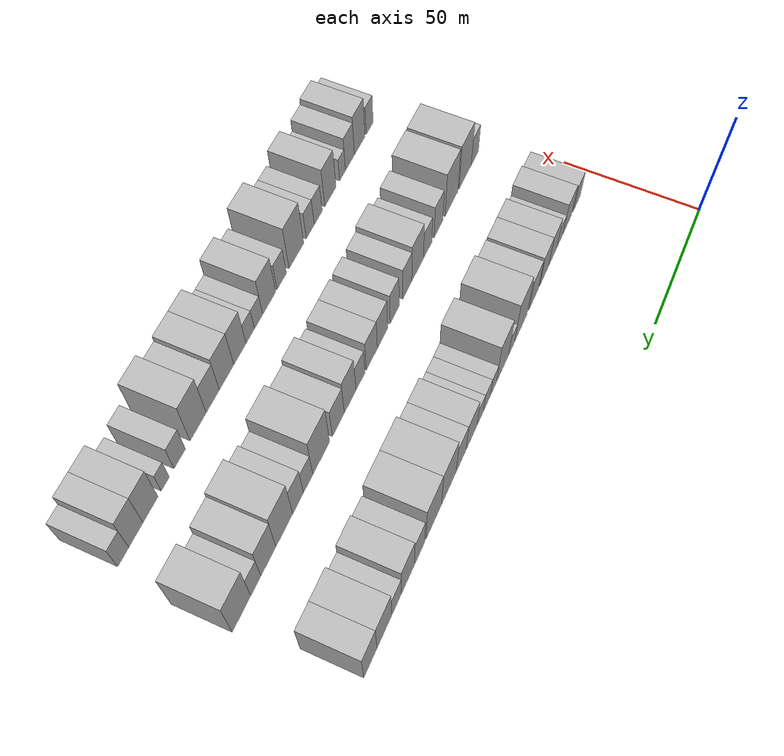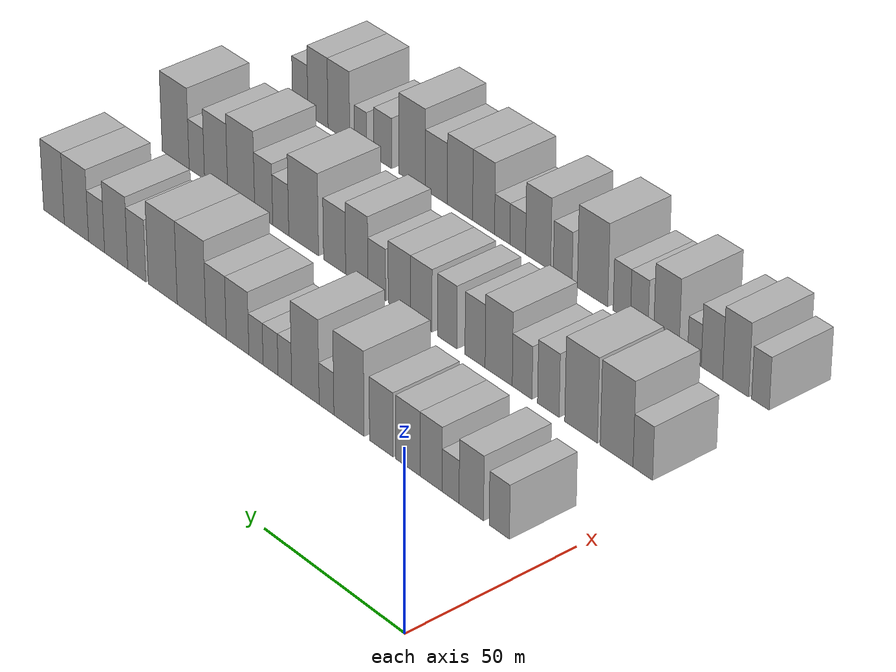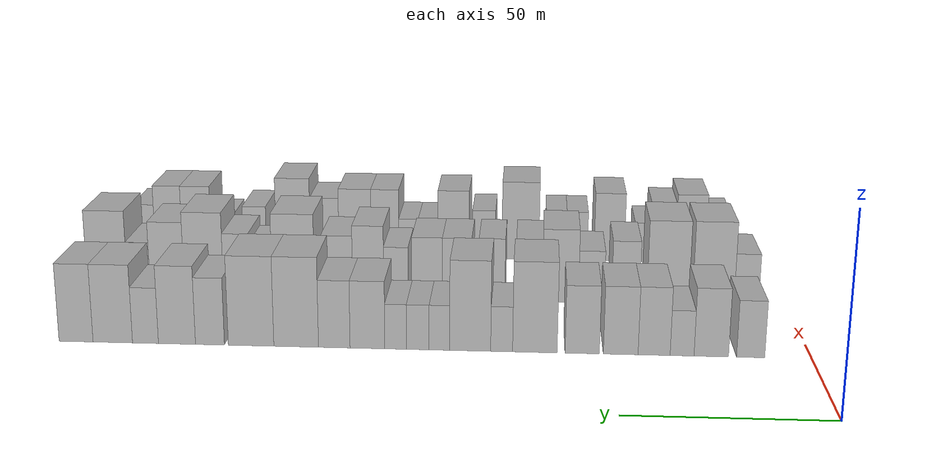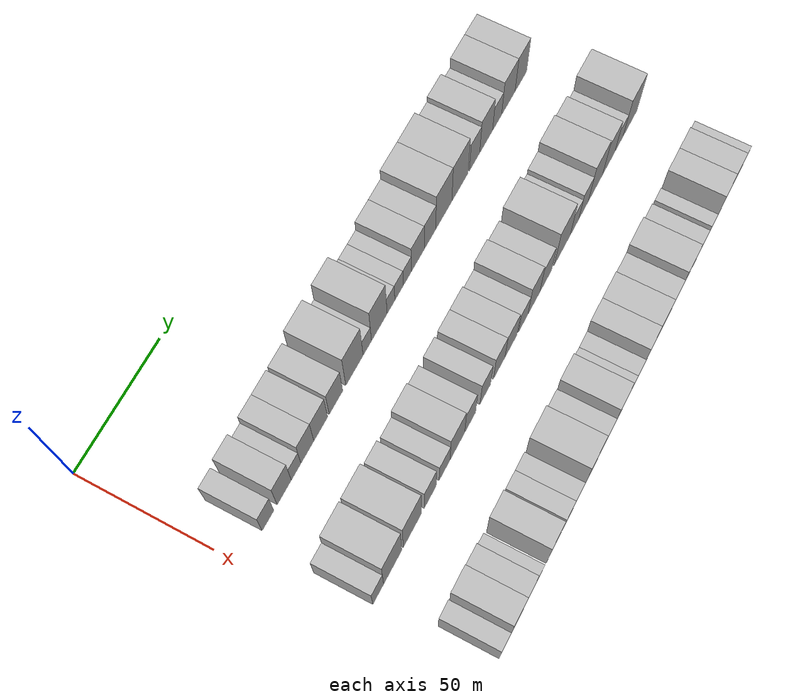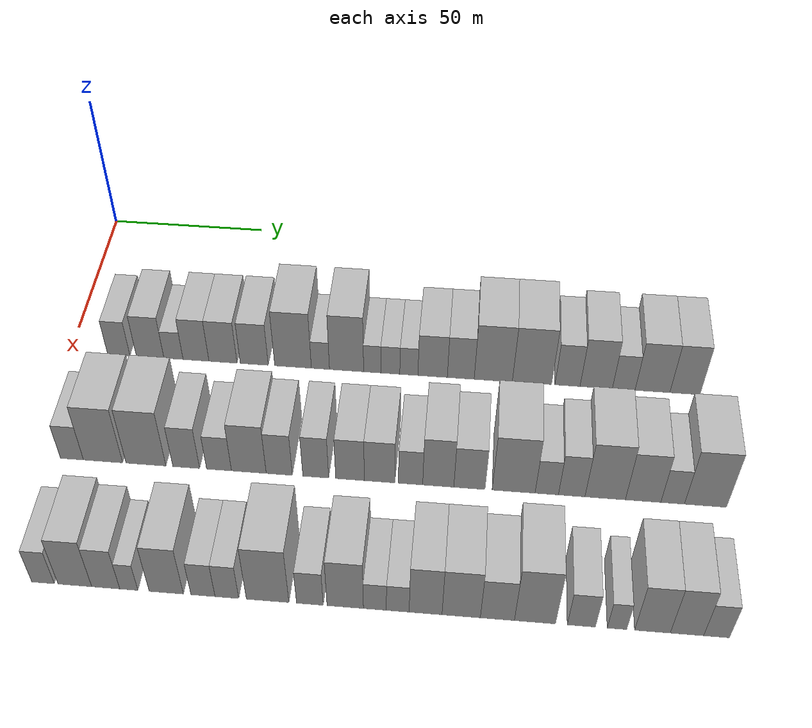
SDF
<sdf version="1.6">
 <world name="default">
  <model name="building_41">
   <static>1</static>
   <pose>50.0000 15.2421 0 0.000000 0.000000 0.000000</pose>
   <link name="link">
    <pose>0 0 7.50 0 0 0</pose>
    <collision name="collision"><geometry><box><size>20.0000 7.0069 15.0000</size></box></geometry></collision>
    <visual name="visual">
     <cast_shadows>0</cast_shadows>
     <geometry><box><size>20.0000 7.0069 15.0000</size></box></geometry>
     <material>
      <script>
       <uri>model://HANNAS_wall/materials/scripts</uri>
       <uri>model://HANNAS_wall/materials/textures</uri>
       <name>vrc/HANNAS_wall</name>
      </script>
     </material>
    </visual>
   </link>
  </model>
  <model name="building_42">
   <static>1</static>
   <pose>50.0000 25.0485 0 0.000000 0.000000 0.000000</pose>
   <link name="link">
    <pose>0 0 9.00 0 0 0</pose>
    <collision name="collision"><geometry><box><size>20.0000 8.6059 18.0000</size></box></geometry></collision>
    <visual name="visual">
     <cast_shadows>0</cast_shadows>
     <geometry><box><size>20.0000 8.6059 18.0000</size></box></geometry>
     <material>
      <script>
       <uri>model://HANNAS_wall/materials/scripts</uri>
       <uri>model://HANNAS_wall/materials/textures</uri>
       <name>vrc/HANNAS_wall</name>
      </script>
     </material>
    </visual>
   </link>
  </model>
  <model name="building_43">
   <static>1</static>
   <pose>50.0000 32.3402 0 0.000000 0.000000 0.000000</pose>
   <link name="link">
    <pose>0 0 6.00 0 0 0</pose>
    <collision name="collision"><geometry><box><size>20.0000 5.9775 12.0000</size></box></geometry></collision>
    <visual name="visual">
     <cast_shadows>0</cast_shadows>
     <geometry><box><size>20.0000 5.9775 12.0000</size></box></geometry>
     <material>
      <script>
       <uri>model://HANNAS_wall/materials/scripts</uri>
       <uri>model://HANNAS_wall/materials/textures</uri>
       <name>vrc/HANNAS_wall</name>
      </script>
     </material>
    </visual>
   </link>
  </model>
  <model name="building_44">
   <static>1</static>
   <pose>50.0000 39.3479 0 0.000000 0.000000 0.000000</pose>
   <link name="link">
    <pose>0 0 9.00 0 0 0</pose>
    <collision name="collision"><geometry><box><size>20.0000 8.0379 18.0000</size></box></geometry></collision>
    <visual name="visual">
     <cast_shadows>0</cast_shadows>
     <geometry><box><size>20.0000 8.0379 18.0000</size></box></geometry>
     <material>
      <script>
       <uri>model://HANNAS_wall/materials/scripts</uri>
       <uri>model://HANNAS_wall/materials/textures</uri>
       <name>vrc/HANNAS_wall</name>
      </script>
     </material>
    </visual>
   </link>
  </model>
  <model name="building_45">
   <static>1</static>
   <pose>50.0000 47.7327 0 0.000000 0.000000 0.000000</pose>
   <link name="link">
    <pose>0 0 9.00 0 0 0</pose>
    <collision name="collision"><geometry><box><size>20.0000 8.7317 18.0000</size></box></geometry></collision>
    <visual name="visual">
     <cast_shadows>0</cast_shadows>
     <geometry><box><size>20.0000 8.7317 18.0000</size></box></geometry>
     <material>
      <script>
       <uri>model://HANNAS_wall/materials/scripts</uri>
       <uri>model://HANNAS_wall/materials/textures</uri>
       <name>vrc/HANNAS_wall</name>
      </script>
     </material>
    </visual>
   </link>
  </model>
  <model name="building_46">
   <static>1</static>
   <pose>50.0000 57.4240 0 0.000000 0.000000 0.000000</pose>
   <link name="link">
    <pose>0 0 9.00 0 0 0</pose>
    <collision name="collision"><geometry><box><size>20.0000 8.6509 18.0000</size></box></geometry></collision>
    <visual name="visual">
     <cast_shadows>0</cast_shadows>
     <geometry><box><size>20.0000 8.6509 18.0000</size></box></geometry>
     <material>
      <script>
       <uri>model://HANNAS_wall/materials/scripts</uri>
       <uri>model://HANNAS_wall/materials/textures</uri>
       <name>vrc/HANNAS_wall</name>
      </script>
     </material>
    </visual>
   </link>
  </model>
  <model name="building_47">
   <static>1</static>
   <pose>50.0000 69.3902 0 0.000000 0.000000 0.000000</pose>
   <link name="link">
    <pose>0 0 12.00 0 0 0</pose>
    <collision name="collision"><geometry><box><size>20.0000 11.2815 24.0000</size></box></geometry></collision>
    <visual name="visual">
     <cast_shadows>0</cast_shadows>
     <geometry><box><size>20.0000 11.2815 24.0000</size></box></geometry>
     <material>
      <script>
       <uri>model://HANNAS_wall/materials/scripts</uri>
       <uri>model://HANNAS_wall/materials/textures</uri>
       <name>vrc/HANNAS_wall</name>
      </script>
     </material>
    </visual>
   </link>
  </model>
  <model name="building_48">
   <static>1</static>
   <pose>50.0000 77.8082 0 0.000000 0.000000 0.000000</pose>
   <link name="link">
    <pose>0 0 6.00 0 0 0</pose>
    <collision name="collision"><geometry><box><size>20.0000 5.5546 12.0000</size></box></geometry></collision>
    <visual name="visual">
     <cast_shadows>0</cast_shadows>
     <geometry><box><size>20.0000 5.5546 12.0000</size></box></geometry>
     <material>
      <script>
       <uri>model://HANNAS_wall/materials/scripts</uri>
       <uri>model://HANNAS_wall/materials/textures</uri>
       <name>vrc/HANNAS_wall</name>
      </script>
     </material>
    </visual>
   </link>
  </model>
  <model name="building_49">
   <static>1</static>
   <pose>50.0000 85.8110 0 0.000000 0.000000 0.000000</pose>
   <link name="link">
    <pose>0 0 12.00 0 0 0</pose>
    <collision name="collision"><geometry><box><size>20.0000 10.4510 24.0000</size></box></geometry></collision>
    <visual name="visual">
     <cast_shadows>0</cast_shadows>
     <geometry><box><size>20.0000 10.4510 24.0000</size></box></geometry>
     <material>
      <script>
       <uri>model://HANNAS_wall/materials/scripts</uri>
       <uri>model://HANNAS_wall/materials/textures</uri>
       <name>vrc/HANNAS_wall</name>
      </script>
     </material>
    </visual>
   </link>
  </model>
  <model name="building_50">
   <static>1</static>
   <pose>50.0000 93.6552 0 0.000000 0.000000 0.000000</pose>
   <link name="link">
    <pose>0 0 6.00 0 0 0</pose>
    <collision name="collision"><geometry><box><size>20.0000 5.2373 12.0000</size></box></geometry></collision>
    <visual name="visual">
     <cast_shadows>0</cast_shadows>
     <geometry><box><size>20.0000 5.2373 12.0000</size></box></geometry>
     <material>
      <script>
       <uri>model://HANNAS_wall/materials/scripts</uri>
       <uri>model://HANNAS_wall/materials/textures</uri>
       <name>vrc/HANNAS_wall</name>
      </script>
     </material>
    </visual>
   </link>
  </model>
  <model name="building_51">
   <static>1</static>
   <pose>50.0000 99.1758 0 0.000000 0.000000 0.000000</pose>
   <link name="link">
    <pose>0 0 6.00 0 0 0</pose>
    <collision name="collision"><geometry><box><size>20.0000 5.8039 12.0000</size></box></geometry></collision>
    <visual name="visual">
     <cast_shadows>0</cast_shadows>
     <geometry><box><size>20.0000 5.8039 12.0000</size></box></geometry>
     <material>
      <script>
       <uri>model://HANNAS_wall/materials/scripts</uri>
       <uri>model://HANNAS_wall/materials/textures</uri>
       <name>vrc/HANNAS_wall</name>
      </script>
     </material>
    </visual>
   </link>
  </model>
  <model name="building_52">
   <static>1</static>
   <pose>50.0000 104.8412 0 0.000000 0.000000 0.000000</pose>
   <link name="link">
    <pose>0 0 6.00 0 0 0</pose>
    <collision name="collision"><geometry><box><size>20.0000 5.5271 12.0000</size></box></geometry></collision>
    <visual name="visual">
     <cast_shadows>0</cast_shadows>
     <geometry><box><size>20.0000 5.5271 12.0000</size></box></geometry>
     <material>
      <script>
       <uri>model://HANNAS_wall/materials/scripts</uri>
       <uri>model://HANNAS_wall/materials/textures</uri>
       <name>vrc/HANNAS_wall</name>
      </script>
     </material>
    </visual>
   </link>
  </model>
  <model name="building_53">
   <static>1</static>
   <pose>50.0000 112.0588 0 0.000000 0.000000 0.000000</pose>
   <link name="link">
    <pose>0 0 9.00 0 0 0</pose>
    <collision name="collision"><geometry><box><size>20.0000 8.9081 18.0000</size></box></geometry></collision>
    <visual name="visual">
     <cast_shadows>0</cast_shadows>
     <geometry><box><size>20.0000 8.9081 18.0000</size></box></geometry>
     <material>
      <script>
       <uri>model://HANNAS_wall/materials/scripts</uri>
       <uri>model://HANNAS_wall/materials/textures</uri>
       <name>vrc/HANNAS_wall</name>
      </script>
     </material>
    </visual>
   </link>
  </model>
  <model name="building_54">
   <static>1</static>
   <pose>50.0000 120.5730 0 0.000000 0.000000 0.000000</pose>
   <link name="link">
    <pose>0 0 9.00 0 0 0</pose>
    <collision name="collision"><geometry><box><size>20.0000 8.1203 18.0000</size></box></geometry></collision>
    <visual name="visual">
     <cast_shadows>0</cast_shadows>
     <geometry><box><size>20.0000 8.1203 18.0000</size></box></geometry>
     <material>
      <script>
       <uri>model://HANNAS_wall/materials/scripts</uri>
       <uri>model://HANNAS_wall/materials/textures</uri>
       <name>vrc/HANNAS_wall</name>
      </script>
     </material>
    </visual>
   </link>
  </model>
  <model name="building_55">
   <static>1</static>
   <pose>50.0000 130.3924 0 0.000000 0.000000 0.000000</pose>
   <link name="link">
    <pose>0 0 12.00 0 0 0</pose>
    <collision name="collision"><geometry><box><size>20.0000 11.5184 24.0000</size></box></geometry></collision>
    <visual name="visual">
     <cast_shadows>0</cast_shadows>
     <geometry><box><size>20.0000 11.5184 24.0000</size></box></geometry>
     <material>
      <script>
       <uri>model://HANNAS_wall/materials/scripts</uri>
       <uri>model://HANNAS_wall/materials/textures</uri>
       <name>vrc/HANNAS_wall</name>
      </script>
     </material>
    </visual>
   </link>
  </model>
  <model name="building_56">
   <static>1</static>
   <pose>50.0000 142.0532 0 0.000000 0.000000 0.000000</pose>
   <link name="link">
    <pose>0 0 12.00 0 0 0</pose>
    <collision name="collision"><geometry><box><size>20.0000 11.8031 24.0000</size></box></geometry></collision>
    <visual name="visual">
     <cast_shadows>0</cast_shadows>
     <geometry><box><size>20.0000 11.8031 24.0000</size></box></geometry>
     <material>
      <script>
       <uri>model://HANNAS_wall/materials/scripts</uri>
       <uri>model://HANNAS_wall/materials/textures</uri>
       <name>vrc/HANNAS_wall</name>
      </script>
     </material>
    </visual>
   </link>
  </model>
  <model name="building_57">
   <static>1</static>
   <pose>50.0000 152.7229 0 0.000000 0.000000 0.000000</pose>
   <link name="link">
    <pose>0 0 9.00 0 0 0</pose>
    <collision name="collision"><geometry><box><size>20.0000 7.5364 18.0000</size></box></geometry></collision>
    <visual name="visual">
     <cast_shadows>0</cast_shadows>
     <geometry><box><size>20.0000 7.5364 18.0000</size></box></geometry>
     <material>
      <script>
       <uri>model://HANNAS_wall/materials/scripts</uri>
       <uri>model://HANNAS_wall/materials/textures</uri>
       <name>vrc/HANNAS_wall</name>
      </script>
     </material>
    </visual>
   </link>
  </model>
  <model name="building_58">
   <static>1</static>
   <pose>50.0000 161.3210 0 0.000000 0.000000 0.000000</pose>
   <link name="link">
    <pose>0 0 10.50 0 0 0</pose>
    <collision name="collision"><geometry><box><size>20.0000 9.6599 21.0000</size></box></geometry></collision>
    <visual name="visual">
     <cast_shadows>0</cast_shadows>
     <geometry><box><size>20.0000 9.6599 21.0000</size></box></geometry>
     <material>
      <script>
       <uri>model://HANNAS_wall/materials/scripts</uri>
       <uri>model://HANNAS_wall/materials/textures</uri>
       <name>vrc/HANNAS_wall</name>
      </script>
     </material>
    </visual>
   </link>
  </model>
  <model name="building_59">
   <static>1</static>
   <pose>50.0000 169.5374 0 0.000000 0.000000 0.000000</pose>
   <link name="link">
    <pose>0 0 7.50 0 0 0</pose>
    <collision name="collision"><geometry><box><size>20.0000 6.7729 15.0000</size></box></geometry></collision>
    <visual name="visual">
     <cast_shadows>0</cast_shadows>
     <geometry><box><size>20.0000 6.7729 15.0000</size></box></geometry>
     <material>
      <script>
       <uri>model://HANNAS_wall/materials/scripts</uri>
       <uri>model://HANNAS_wall/materials/textures</uri>
       <name>vrc/HANNAS_wall</name>
      </script>
     </material>
    </visual>
   </link>
  </model>
  <model name="building_60">
   <static>1</static>
   <pose>50.0000 178.0933 0 0.000000 0.000000 0.000000</pose>
   <link name="link">
    <pose>0 0 10.50 0 0 0</pose>
    <collision name="collision"><geometry><box><size>20.0000 10.3389 21.0000</size></box></geometry></collision>
    <visual name="visual">
     <cast_shadows>0</cast_shadows>
     <geometry><box><size>20.0000 10.3389 21.0000</size></box></geometry>
     <material>
      <script>
       <uri>model://HANNAS_wall/materials/scripts</uri>
       <uri>model://HANNAS_wall/materials/textures</uri>
       <name>vrc/HANNAS_wall</name>
      </script>
     </material>
    </visual>
   </link>
  </model>
  <model name="building_61">
   <static>1</static>
   <pose>50.0000 187.7271 0 0.000000 0.000000 0.000000</pose>
   <link name="link">
    <pose>0 0 10.50 0 0 0</pose>
    <collision name="collision"><geometry><box><size>20.0000 8.9287 21.0000</size></box></geometry></collision>
    <visual name="visual">
     <cast_shadows>0</cast_shadows>
     <geometry><box><size>20.0000 8.9287 21.0000</size></box></geometry>
     <material>
      <script>
       <uri>model://HANNAS_wall/materials/scripts</uri>
       <uri>model://HANNAS_wall/materials/textures</uri>
       <name>vrc/HANNAS_wall</name>
      </script>
     </material>
    </visual>
   </link>
  </model>
  <model name="building_125">
   <static>1</static>
   <pose>90.0000 11.3029 0 0.000000 0.000000 0.000000</pose>
   <link name="link">
    <pose>0 0 7.50 0 0 0</pose>
    <collision name="collision"><geometry><box><size>20.0000 6.7127 15.0000</size></box></geometry></collision>
    <visual name="visual">
     <cast_shadows>0</cast_shadows>
     <geometry><box><size>20.0000 6.7127 15.0000</size></box></geometry>
     <material>
      <script>
       <uri>model://HANNAS_wall/materials/scripts</uri>
       <uri>model://HANNAS_wall/materials/textures</uri>
       <name>vrc/HANNAS_wall</name>
      </script>
     </material>
    </visual>
   </link>
  </model>
  <model name="building_126">
   <static>1</static>
   <pose>90.0000 20.3536 0 0.000000 0.000000 0.000000</pose>
   <link name="link">
    <pose>0 0 12.00 0 0 0</pose>
    <collision name="collision"><geometry><box><size>20.0000 11.3888 24.0000</size></box></geometry></collision>
    <visual name="visual">
     <cast_shadows>0</cast_shadows>
     <geometry><box><size>20.0000 11.3888 24.0000</size></box></geometry>
     <material>
      <script>
       <uri>model://HANNAS_wall/materials/scripts</uri>
       <uri>model://HANNAS_wall/materials/textures</uri>
       <name>vrc/HANNAS_wall</name>
      </script>
     </material>
    </visual>
   </link>
  </model>
  <model name="building_127">
   <static>1</static>
   <pose>90.0000 32.8095 0 0.000000 0.000000 0.000000</pose>
   <link name="link">
    <pose>0 0 12.00 0 0 0</pose>
    <collision name="collision"><geometry><box><size>20.0000 11.5229 24.0000</size></box></geometry></collision>
    <visual name="visual">
     <cast_shadows>0</cast_shadows>
     <geometry><box><size>20.0000 11.5229 24.0000</size></box></geometry>
     <material>
      <script>
       <uri>model://HANNAS_wall/materials/scripts</uri>
       <uri>model://HANNAS_wall/materials/textures</uri>
       <name>vrc/HANNAS_wall</name>
      </script>
     </material>
    </visual>
   </link>
  </model>
  <model name="building_128">
   <static>1</static>
   <pose>90.0000 44.4282 0 0.000000 0.000000 0.000000</pose>
   <link name="link">
    <pose>0 0 9.00 0 0 0</pose>
    <collision name="collision"><geometry><box><size>20.0000 7.7145 18.0000</size></box></geometry></collision>
    <visual name="visual">
     <cast_shadows>0</cast_shadows>
     <geometry><box><size>20.0000 7.7145 18.0000</size></box></geometry>
     <material>
      <script>
       <uri>model://HANNAS_wall/materials/scripts</uri>
       <uri>model://HANNAS_wall/materials/textures</uri>
       <name>vrc/HANNAS_wall</name>
      </script>
     </material>
    </visual>
   </link>
  </model>
  <model name="building_129">
   <static>1</static>
   <pose>90.0000 53.8599 0 0.000000 0.000000 0.000000</pose>
   <link name="link">
    <pose>0 0 7.50 0 0 0</pose>
    <collision name="collision"><geometry><box><size>20.0000 7.1488 15.0000</size></box></geometry></collision>
    <visual name="visual">
     <cast_shadows>0</cast_shadows>
     <geometry><box><size>20.0000 7.1488 15.0000</size></box></geometry>
     <material>
      <script>
       <uri>model://HANNAS_wall/materials/scripts</uri>
       <uri>model://HANNAS_wall/materials/textures</uri>
       <name>vrc/HANNAS_wall</name>
      </script>
     </material>
    </visual>
   </link>
  </model>
  <model name="building_130">
   <static>1</static>
   <pose>90.0000 62.4039 0 0.000000 0.000000 0.000000</pose>
   <link name="link">
    <pose>0 0 10.50 0 0 0</pose>
    <collision name="collision"><geometry><box><size>20.0000 9.9393 21.0000</size></box></geometry></collision>
    <visual name="visual">
     <cast_shadows>0</cast_shadows>
     <geometry><box><size>20.0000 9.9393 21.0000</size></box></geometry>
     <material>
      <script>
       <uri>model://HANNAS_wall/materials/scripts</uri>
       <uri>model://HANNAS_wall/materials/textures</uri>
       <name>vrc/HANNAS_wall</name>
      </script>
     </material>
    </visual>
   </link>
  </model>
  <model name="building_131">
   <static>1</static>
   <pose>90.0000 71.0984 0 0.000000 0.000000 0.000000</pose>
   <link name="link">
    <pose>0 0 9.00 0 0 0</pose>
    <collision name="collision"><geometry><box><size>20.0000 7.4497 18.0000</size></box></geometry></collision>
    <visual name="visual">
     <cast_shadows>0</cast_shadows>
     <geometry><box><size>20.0000 7.4497 18.0000</size></box></geometry>
     <material>
      <script>
       <uri>model://HANNAS_wall/materials/scripts</uri>
       <uri>model://HANNAS_wall/materials/textures</uri>
       <name>vrc/HANNAS_wall</name>
      </script>
     </material>
    </visual>
   </link>
  </model>
  <model name="building_132">
   <static>1</static>
   <pose>90.0000 81.4880 0 0.000000 0.000000 0.000000</pose>
   <link name="link">
    <pose>0 0 9.00 0 0 0</pose>
    <collision name="collision"><geometry><box><size>20.0000 7.3295 18.0000</size></box></geometry></collision>
    <visual name="visual">
     <cast_shadows>0</cast_shadows>
     <geometry><box><size>20.0000 7.3295 18.0000</size></box></geometry>
     <material>
      <script>
       <uri>model://HANNAS_wall/materials/scripts</uri>
       <uri>model://HANNAS_wall/materials/textures</uri>
       <name>vrc/HANNAS_wall</name>
      </script>
     </material>
    </visual>
   </link>
  </model>
  <model name="building_133">
   <static>1</static>
   <pose>90.0000 91.2177 0 0.000000 0.000000 0.000000</pose>
   <link name="link">
    <pose>0 0 9.00 0 0 0</pose>
    <collision name="collision"><geometry><box><size>20.0000 8.1301 18.0000</size></box></geometry></collision>
    <visual name="visual">
     <cast_shadows>0</cast_shadows>
     <geometry><box><size>20.0000 8.1301 18.0000</size></box></geometry>
     <material>
      <script>
       <uri>model://HANNAS_wall/materials/scripts</uri>
       <uri>model://HANNAS_wall/materials/textures</uri>
       <name>vrc/HANNAS_wall</name>
      </script>
     </material>
    </visual>
   </link>
  </model>
  <model name="building_134">
   <static>1</static>
   <pose>90.0000 99.5741 0 0.000000 0.000000 0.000000</pose>
   <link name="link">
    <pose>0 0 9.00 0 0 0</pose>
    <collision name="collision"><geometry><box><size>20.0000 8.5826 18.0000</size></box></geometry></collision>
    <visual name="visual">
     <cast_shadows>0</cast_shadows>
     <geometry><box><size>20.0000 8.5826 18.0000</size></box></geometry>
     <material>
      <script>
       <uri>model://HANNAS_wall/materials/scripts</uri>
       <uri>model://HANNAS_wall/materials/textures</uri>
       <name>vrc/HANNAS_wall</name>
      </script>
     </material>
    </visual>
   </link>
  </model>
  <model name="building_135">
   <static>1</static>
   <pose>90.0000 108.2905 0 0.000000 0.000000 0.000000</pose>
   <link name="link">
    <pose>0 0 7.50 0 0 0</pose>
    <collision name="collision"><geometry><box><size>20.0000 6.8503 15.0000</size></box></geometry></collision>
    <visual name="visual">
     <cast_shadows>0</cast_shadows>
     <geometry><box><size>20.0000 6.8503 15.0000</size></box></geometry>
     <material>
      <script>
       <uri>model://HANNAS_wall/materials/scripts</uri>
       <uri>model://HANNAS_wall/materials/textures</uri>
       <name>vrc/HANNAS_wall</name>
      </script>
     </material>
    </visual>
   </link>
  </model>
  <model name="building_136">
   <static>1</static>
   <pose>90.0000 116.0845 0 0.000000 0.000000 0.000000</pose>
   <link name="link">
    <pose>0 0 10.50 0 0 0</pose>
    <collision name="collision"><geometry><box><size>20.0000 8.7376 21.0000</size></box></geometry></collision>
    <visual name="visual">
     <cast_shadows>0</cast_shadows>
     <geometry><box><size>20.0000 8.7376 21.0000</size></box></geometry>
     <material>
      <script>
       <uri>model://HANNAS_wall/materials/scripts</uri>
       <uri>model://HANNAS_wall/materials/textures</uri>
       <name>vrc/HANNAS_wall</name>
      </script>
     </material>
    </visual>
   </link>
  </model>
  <model name="building_137">
   <static>1</static>
   <pose>90.0000 124.8177 0 0.000000 0.000000 0.000000</pose>
   <link name="link">
    <pose>0 0 9.00 0 0 0</pose>
    <collision name="collision"><geometry><box><size>20.0000 8.7287 18.0000</size></box></geometry></collision>
    <visual name="visual">
     <cast_shadows>0</cast_shadows>
     <geometry><box><size>20.0000 8.7287 18.0000</size></box></geometry>
     <material>
      <script>
       <uri>model://HANNAS_wall/materials/scripts</uri>
       <uri>model://HANNAS_wall/materials/textures</uri>
       <name>vrc/HANNAS_wall</name>
      </script>
     </material>
    </visual>
   </link>
  </model>
  <model name="building_138">
   <static>1</static>
   <pose>90.0000 137.1589 0 0.000000 0.000000 0.000000</pose>
   <link name="link">
    <pose>0 0 12.00 0 0 0</pose>
    <collision name="collision"><geometry><box><size>20.0000 11.9539 24.0000</size></box></geometry></collision>
    <visual name="visual">
     <cast_shadows>0</cast_shadows>
     <geometry><box><size>20.0000 11.9539 24.0000</size></box></geometry>
     <material>
      <script>
       <uri>model://HANNAS_wall/materials/scripts</uri>
       <uri>model://HANNAS_wall/materials/textures</uri>
       <name>vrc/HANNAS_wall</name>
      </script>
     </material>
    </visual>
   </link>
  </model>
  <model name="building_139">
   <static>1</static>
   <pose>90.0000 146.3776 0 0.000000 0.000000 0.000000</pose>
   <link name="link">
    <pose>0 0 7.50 0 0 0</pose>
    <collision name="collision"><geometry><box><size>20.0000 6.4835 15.0000</size></box></geometry></collision>
    <visual name="visual">
     <cast_shadows>0</cast_shadows>
     <geometry><box><size>20.0000 6.4835 15.0000</size></box></geometry>
     <material>
      <script>
       <uri>model://HANNAS_wall/materials/scripts</uri>
       <uri>model://HANNAS_wall/materials/textures</uri>
       <name>vrc/HANNAS_wall</name>
      </script>
     </material>
    </visual>
   </link>
  </model>
  <model name="building_140">
   <static>1</static>
   <pose>90.0000 153.2959 0 0.000000 0.000000 0.000000</pose>
   <link name="link">
    <pose>0 0 9.00 0 0 0</pose>
    <collision name="collision"><geometry><box><size>20.0000 7.3530 18.0000</size></box></geometry></collision>
    <visual name="visual">
     <cast_shadows>0</cast_shadows>
     <geometry><box><size>20.0000 7.3530 18.0000</size></box></geometry>
     <material>
      <script>
       <uri>model://HANNAS_wall/materials/scripts</uri>
       <uri>model://HANNAS_wall/materials/textures</uri>
       <name>vrc/HANNAS_wall</name>
      </script>
     </material>
    </visual>
   </link>
  </model>
  <model name="building_141">
   <static>1</static>
   <pose>90.0000 162.5583 0 0.000000 0.000000 0.000000</pose>
   <link name="link">
    <pose>0 0 12.00 0 0 0</pose>
    <collision name="collision"><geometry><box><size>20.0000 11.1719 24.0000</size></box></geometry></collision>
    <visual name="visual">
     <cast_shadows>0</cast_shadows>
     <geometry><box><size>20.0000 11.1719 24.0000</size></box></geometry>
     <material>
      <script>
       <uri>model://HANNAS_wall/materials/scripts</uri>
       <uri>model://HANNAS_wall/materials/textures</uri>
       <name>vrc/HANNAS_wall</name>
      </script>
     </material>
    </visual>
   </link>
  </model>
  <model name="building_142">
   <static>1</static>
   <pose>90.0000 173.0213 0 0.000000 0.000000 0.000000</pose>
   <link name="link">
    <pose>0 0 10.50 0 0 0</pose>
    <collision name="collision"><geometry><box><size>20.0000 9.7540 21.0000</size></box></geometry></collision>
    <visual name="visual">
     <cast_shadows>0</cast_shadows>
     <geometry><box><size>20.0000 9.7540 21.0000</size></box></geometry>
     <material>
      <script>
       <uri>model://HANNAS_wall/materials/scripts</uri>
       <uri>model://HANNAS_wall/materials/textures</uri>
       <name>vrc/HANNAS_wall</name>
      </script>
     </material>
    </visual>
   </link>
  </model>
  <model name="building_143">
   <static>1</static>
   <pose>90.0000 181.1396 0 0.000000 0.000000 0.000000</pose>
   <link name="link">
    <pose>0 0 7.50 0 0 0</pose>
    <collision name="collision"><geometry><box><size>20.0000 6.4827 15.0000</size></box></geometry></collision>
    <visual name="visual">
     <cast_shadows>0</cast_shadows>
     <geometry><box><size>20.0000 6.4827 15.0000</size></box></geometry>
     <material>
      <script>
       <uri>model://HANNAS_wall/materials/scripts</uri>
       <uri>model://HANNAS_wall/materials/textures</uri>
       <name>vrc/HANNAS_wall</name>
      </script>
     </material>
    </visual>
   </link>
  </model>
  <model name="building_144">
   <static>1</static>
   <pose>90.0000 190.1336 0 0.000000 0.000000 0.000000</pose>
   <link name="link">
    <pose>0 0 12.00 0 0 0</pose>
    <collision name="collision"><geometry><box><size>20.0000 11.5052 24.0000</size></box></geometry></collision>
    <visual name="visual">
     <cast_shadows>0</cast_shadows>
     <geometry><box><size>20.0000 11.5052 24.0000</size></box></geometry>
     <material>
      <script>
       <uri>model://HANNAS_wall/materials/scripts</uri>
       <uri>model://HANNAS_wall/materials/textures</uri>
       <name>vrc/HANNAS_wall</name>
      </script>
     </material>
    </visual>
   </link>
  </model>
  <model name="building_207">
   <static>1</static>
   <pose>130.0000 14.3515 0 0.000000 0.000000 0.000000</pose>
   <link name="link">
    <pose>0 0 7.50 0 0 0</pose>
    <collision name="collision"><geometry><box><size>20.0000 6.0447 15.0000</size></box></geometry></collision>
    <visual name="visual">
     <cast_shadows>0</cast_shadows>
     <geometry><box><size>20.0000 6.0447 15.0000</size></box></geometry>
     <material>
      <script>
       <uri>model://HANNAS_wall/materials/scripts</uri>
       <uri>model://HANNAS_wall/materials/textures</uri>
       <name>vrc/HANNAS_wall</name>
      </script>
     </material>
    </visual>
   </link>
  </model>
  <model name="building_208">
   <static>1</static>
   <pose>130.0000 22.8855 0 0.000000 0.000000 0.000000</pose>
   <link name="link">
    <pose>0 0 10.50 0 0 0</pose>
    <collision name="collision"><geometry><box><size>20.0000 9.0233 21.0000</size></box></geometry></collision>
    <visual name="visual">
     <cast_shadows>0</cast_shadows>
     <geometry><box><size>20.0000 9.0233 21.0000</size></box></geometry>
     <material>
      <script>
       <uri>model://HANNAS_wall/materials/scripts</uri>
       <uri>model://HANNAS_wall/materials/textures</uri>
       <name>vrc/HANNAS_wall</name>
      </script>
     </material>
    </visual>
   </link>
  </model>
  <model name="building_209">
   <static>1</static>
   <pose>130.0000 31.1443 0 0.000000 0.000000 0.000000</pose>
   <link name="link">
    <pose>0 0 9.00 0 0 0</pose>
    <collision name="collision"><geometry><box><size>20.0000 7.4941 18.0000</size></box></geometry></collision>
    <visual name="visual">
     <cast_shadows>0</cast_shadows>
     <geometry><box><size>20.0000 7.4941 18.0000</size></box></geometry>
     <material>
      <script>
       <uri>model://HANNAS_wall/materials/scripts</uri>
       <uri>model://HANNAS_wall/materials/textures</uri>
       <name>vrc/HANNAS_wall</name>
      </script>
     </material>
    </visual>
   </link>
  </model>
  <model name="building_210">
   <static>1</static>
   <pose>130.0000 37.3021 0 0.000000 0.000000 0.000000</pose>
   <link name="link">
    <pose>0 0 6.00 0 0 0</pose>
    <collision name="collision"><geometry><box><size>20.0000 4.8215 12.0000</size></box></geometry></collision>
    <visual name="visual">
     <cast_shadows>0</cast_shadows>
     <geometry><box><size>20.0000 4.8215 12.0000</size></box></geometry>
     <material>
      <script>
       <uri>model://HANNAS_wall/materials/scripts</uri>
       <uri>model://HANNAS_wall/materials/textures</uri>
       <name>vrc/HANNAS_wall</name>
      </script>
     </material>
    </visual>
   </link>
  </model>
  <model name="building_211">
   <static>1</static>
   <pose>130.0000 47.2509 0 0.000000 0.000000 0.000000</pose>
   <link name="link">
    <pose>0 0 10.50 0 0 0</pose>
    <collision name="collision"><geometry><box><size>20.0000 9.0762 21.0000</size></box></geometry></collision>
    <visual name="visual">
     <cast_shadows>0</cast_shadows>
     <geometry><box><size>20.0000 9.0762 21.0000</size></box></geometry>
     <material>
      <script>
       <uri>model://HANNAS_wall/materials/scripts</uri>
       <uri>model://HANNAS_wall/materials/textures</uri>
       <name>vrc/HANNAS_wall</name>
      </script>
     </material>
    </visual>
   </link>
  </model>
  <model name="building_212">
   <static>1</static>
   <pose>130.0000 56.9710 0 0.000000 0.000000 0.000000</pose>
   <link name="link">
    <pose>0 0 7.50 0 0 0</pose>
    <collision name="collision"><geometry><box><size>20.0000 6.3638 15.0000</size></box></geometry></collision>
    <visual name="visual">
     <cast_shadows>0</cast_shadows>
     <geometry><box><size>20.0000 6.3638 15.0000</size></box></geometry>
     <material>
      <script>
       <uri>model://HANNAS_wall/materials/scripts</uri>
       <uri>model://HANNAS_wall/materials/textures</uri>
       <name>vrc/HANNAS_wall</name>
      </script>
     </material>
    </visual>
   </link>
  </model>
  <model name="building_213">
   <static>1</static>
   <pose>130.0000 63.2778 0 0.000000 0.000000 0.000000</pose>
   <link name="link">
    <pose>0 0 7.50 0 0 0</pose>
    <collision name="collision"><geometry><box><size>20.0000 6.2499 15.0000</size></box></geometry></collision>
    <visual name="visual">
     <cast_shadows>0</cast_shadows>
     <geometry><box><size>20.0000 6.2499 15.0000</size></box></geometry>
     <material>
      <script>
       <uri>model://HANNAS_wall/materials/scripts</uri>
       <uri>model://HANNAS_wall/materials/textures</uri>
       <name>vrc/HANNAS_wall</name>
      </script>
     </material>
    </visual>
   </link>
  </model>
  <model name="building_214">
   <static>1</static>
   <pose>130.0000 73.9936 0 0.000000 0.000000 0.000000</pose>
   <link name="link">
    <pose>0 0 12.00 0 0 0</pose>
    <collision name="collision"><geometry><box><size>20.0000 11.1817 24.0000</size></box></geometry></collision>
    <visual name="visual">
     <cast_shadows>0</cast_shadows>
     <geometry><box><size>20.0000 11.1817 24.0000</size></box></geometry>
     <material>
      <script>
       <uri>model://HANNAS_wall/materials/scripts</uri>
       <uri>model://HANNAS_wall/materials/textures</uri>
       <name>vrc/HANNAS_wall</name>
      </script>
     </material>
    </visual>
   </link>
  </model>
  <model name="building_215">
   <static>1</static>
   <pose>130.0000 85.0687 0 0.000000 0.000000 0.000000</pose>
   <link name="link">
    <pose>0 0 7.50 0 0 0</pose>
    <collision name="collision"><geometry><box><size>20.0000 6.9684 15.0000</size></box></geometry></collision>
    <visual name="visual">
     <cast_shadows>0</cast_shadows>
     <geometry><box><size>20.0000 6.9684 15.0000</size></box></geometry>
     <material>
      <script>
       <uri>model://HANNAS_wall/materials/scripts</uri>
       <uri>model://HANNAS_wall/materials/textures</uri>
       <name>vrc/HANNAS_wall</name>
      </script>
     </material>
    </visual>
   </link>
  </model>
  <model name="building_216">
   <static>1</static>
   <pose>130.0000 94.2894 0 0.000000 0.000000 0.000000</pose>
   <link name="link">
    <pose>0 0 10.50 0 0 0</pose>
    <collision name="collision"><geometry><box><size>20.0000 9.4730 21.0000</size></box></geometry></collision>
    <visual name="visual">
     <cast_shadows>0</cast_shadows>
     <geometry><box><size>20.0000 9.4730 21.0000</size></box></geometry>
     <material>
      <script>
       <uri>model://HANNAS_wall/materials/scripts</uri>
       <uri>model://HANNAS_wall/materials/textures</uri>
       <name>vrc/HANNAS_wall</name>
      </script>
     </material>
    </visual>
   </link>
  </model>
  <model name="building_217">
   <static>1</static>
   <pose>130.0000 102.0058 0 0.000000 0.000000 0.000000</pose>
   <link name="link">
    <pose>0 0 6.00 0 0 0</pose>
    <collision name="collision"><geometry><box><size>20.0000 5.9599 12.0000</size></box></geometry></collision>
    <visual name="visual">
     <cast_shadows>0</cast_shadows>
     <geometry><box><size>20.0000 5.9599 12.0000</size></box></geometry>
     <material>
      <script>
       <uri>model://HANNAS_wall/materials/scripts</uri>
       <uri>model://HANNAS_wall/materials/textures</uri>
       <name>vrc/HANNAS_wall</name>
      </script>
     </material>
    </visual>
   </link>
  </model>
  <model name="building_218">
   <static>1</static>
   <pose>130.0000 107.9349 0 0.000000 0.000000 0.000000</pose>
   <link name="link">
    <pose>0 0 6.00 0 0 0</pose>
    <collision name="collision"><geometry><box><size>20.0000 5.8982 12.0000</size></box></geometry></collision>
    <visual name="visual">
     <cast_shadows>0</cast_shadows>
     <geometry><box><size>20.0000 5.8982 12.0000</size></box></geometry>
     <material>
      <script>
       <uri>model://HANNAS_wall/materials/scripts</uri>
       <uri>model://HANNAS_wall/materials/textures</uri>
       <name>vrc/HANNAS_wall</name>
      </script>
     </material>
    </visual>
   </link>
  </model>
  <model name="building_219">
   <static>1</static>
   <pose>130.0000 115.1287 0 0.000000 0.000000 0.000000</pose>
   <link name="link">
    <pose>0 0 10.50 0 0 0</pose>
    <collision name="collision"><geometry><box><size>20.0000 8.4894 21.0000</size></box></geometry></collision>
    <visual name="visual">
     <cast_shadows>0</cast_shadows>
     <geometry><box><size>20.0000 8.4894 21.0000</size></box></geometry>
     <material>
      <script>
       <uri>model://HANNAS_wall/materials/scripts</uri>
       <uri>model://HANNAS_wall/materials/textures</uri>
       <name>vrc/HANNAS_wall</name>
      </script>
     </material>
    </visual>
   </link>
  </model>
  <model name="building_220">
   <static>1</static>
   <pose>130.0000 124.3047 0 0.000000 0.000000 0.000000</pose>
   <link name="link">
    <pose>0 0 10.50 0 0 0</pose>
    <collision name="collision"><geometry><box><size>20.0000 9.8626 21.0000</size></box></geometry></collision>
    <visual name="visual">
     <cast_shadows>0</cast_shadows>
     <geometry><box><size>20.0000 9.8626 21.0000</size></box></geometry>
     <material>
      <script>
       <uri>model://HANNAS_wall/materials/scripts</uri>
       <uri>model://HANNAS_wall/materials/textures</uri>
       <name>vrc/HANNAS_wall</name>
      </script>
     </material>
    </visual>
   </link>
  </model>
  <model name="building_221">
   <static>1</static>
   <pose>130.0000 133.6117 0 0.000000 0.000000 0.000000</pose>
   <link name="link">
    <pose>0 0 9.00 0 0 0</pose>
    <collision name="collision"><geometry><box><size>20.0000 8.7513 18.0000</size></box></geometry></collision>
    <visual name="visual">
     <cast_shadows>0</cast_shadows>
     <geometry><box><size>20.0000 8.7513 18.0000</size></box></geometry>
     <material>
      <script>
       <uri>model://HANNAS_wall/materials/scripts</uri>
       <uri>model://HANNAS_wall/materials/textures</uri>
       <name>vrc/HANNAS_wall</name>
      </script>
     </material>
    </visual>
   </link>
  </model>
  <model name="building_222">
   <static>1</static>
   <pose>130.0000 143.2401 0 0.000000 0.000000 0.000000</pose>
   <link name="link">
    <pose>0 0 12.00 0 0 0</pose>
    <collision name="collision"><geometry><box><size>20.0000 10.5056 24.0000</size></box></geometry></collision>
    <visual name="visual">
     <cast_shadows>0</cast_shadows>
     <geometry><box><size>20.0000 10.5056 24.0000</size></box></geometry>
     <material>
      <script>
       <uri>model://HANNAS_wall/materials/scripts</uri>
       <uri>model://HANNAS_wall/materials/textures</uri>
       <name>vrc/HANNAS_wall</name>
      </script>
     </material>
    </visual>
   </link>
  </model>
  <model name="building_223">
   <static>1</static>
   <pose>130.0000 155.0740 0 0.000000 0.000000 0.000000</pose>
   <link name="link">
    <pose>0 0 7.50 0 0 0</pose>
    <collision name="collision"><geometry><box><size>20.0000 7.1622 15.0000</size></box></geometry></collision>
    <visual name="visual">
     <cast_shadows>0</cast_shadows>
     <geometry><box><size>20.0000 7.1622 15.0000</size></box></geometry>
     <material>
      <script>
       <uri>model://HANNAS_wall/materials/scripts</uri>
       <uri>model://HANNAS_wall/materials/textures</uri>
       <name>vrc/HANNAS_wall</name>
      </script>
     </material>
    </visual>
   </link>
  </model>
  <model name="building_224">
   <static>1</static>
   <pose>130.0000 164.1301 0 0.000000 0.000000 0.000000</pose>
   <link name="link">
    <pose>0 0 6.00 0 0 0</pose>
    <collision name="collision"><geometry><box><size>20.0000 4.9500 12.0000</size></box></geometry></collision>
    <visual name="visual">
     <cast_shadows>0</cast_shadows>
     <geometry><box><size>20.0000 4.9500 12.0000</size></box></geometry>
     <material>
      <script>
       <uri>model://HANNAS_wall/materials/scripts</uri>
       <uri>model://HANNAS_wall/materials/textures</uri>
       <name>vrc/HANNAS_wall</name>
      </script>
     </material>
    </visual>
   </link>
  </model>
  <model name="building_225">
   <static>1</static>
   <pose>130.0000 173.1081 0 0.000000 0.000000 0.000000</pose>
   <link name="link">
    <pose>0 0 10.50 0 0 0</pose>
    <collision name="collision"><geometry><box><size>20.0000 9.0058 21.0000</size></box></geometry></collision>
    <visual name="visual">
     <cast_shadows>0</cast_shadows>
     <geometry><box><size>20.0000 9.0058 21.0000</size></box></geometry>
     <material>
      <script>
       <uri>model://HANNAS_wall/materials/scripts</uri>
       <uri>model://HANNAS_wall/materials/textures</uri>
       <name>vrc/HANNAS_wall</name>
      </script>
     </material>
    </visual>
   </link>
  </model>
  <model name="building_226">
   <static>1</static>
   <pose>130.0000 181.8159 0 0.000000 0.000000 0.000000</pose>
   <link name="link">
    <pose>0 0 10.50 0 0 0</pose>
    <collision name="collision"><geometry><box><size>20.0000 8.4099 21.0000</size></box></geometry></collision>
    <visual name="visual">
     <cast_shadows>0</cast_shadows>
     <geometry><box><size>20.0000 8.4099 21.0000</size></box></geometry>
     <material>
      <script>
       <uri>model://HANNAS_wall/materials/scripts</uri>
       <uri>model://HANNAS_wall/materials/textures</uri>
       <name>vrc/HANNAS_wall</name>
      </script>
     </material>
    </visual>
   </link>
  </model>
  <model name="building_227">
   <static>1</static>
   <pose>130.0000 189.2572 0 0.000000 0.000000 0.000000</pose>
   <link name="link">
    <pose>0 0 7.50 0 0 0</pose>
    <collision name="collision"><geometry><box><size>20.0000 6.4726 15.0000</size></box></geometry></collision>
    <visual name="visual">
     <cast_shadows>0</cast_shadows>
     <geometry><box><size>20.0000 6.4726 15.0000</size></box></geometry>
     <material>
      <script>
       <uri>model://HANNAS_wall/materials/scripts</uri>
       <uri>model://HANNAS_wall/materials/textures</uri>
       <name>vrc/HANNAS_wall</name>
      </script>
     </material>
    </visual>
   </link>
  </model>
 </world>
</sdf>
